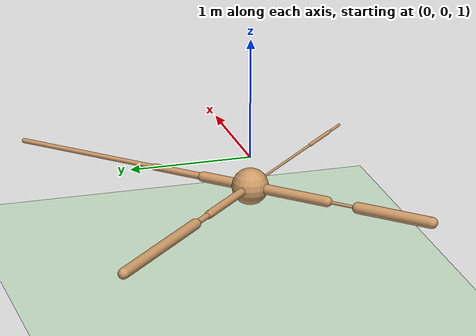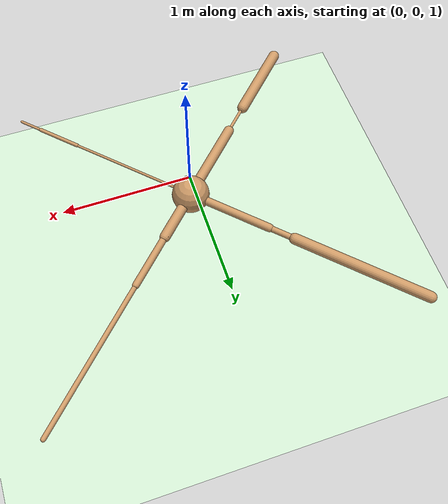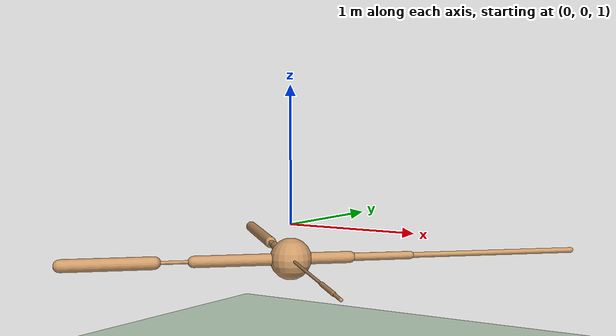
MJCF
<mujoco model="ant">
  <compiler angle="degree" coordinate="local" inertiafromgeom="true" />
  <option integrator="RK4" timestep="0.01" />
  <custom>
    <numeric data="0.0 0.0 0.55 1.0 0.0 0.0 0.0 0.0 1.0 0.0 -1.0 0.0 -1.0 0.0 1.0" name="init_qpos" />
  </custom>
  <default>
    <joint armature="1" damping="1" limited="true" />
    <geom conaffinity="0" condim="3" density="5.0" friction="1 0.5 0.5" margin="0.01" rgba="0.8 0.6 0.4 1" />
  </default>
  <asset>
    <texture builtin="gradient" height="100" rgb1="1 1 1" rgb2="0 0 0" type="skybox" width="100" />
    <texture builtin="flat" height="1278" mark="cross" markrgb="1 1 1" name="texgeom" random="0.01" rgb1="0.8 0.6 0.4" rgb2="0.8 0.6 0.4" type="cube" width="127" />
    <texture builtin="checker" height="100" name="texplane" rgb1="0 0 0" rgb2="0.8 0.8 0.8" type="2d" width="100" />
    <material name="MatPlane" reflectance="0.5" shininess="1" specular="1" texrepeat="60 60" texture="texplane" />
    <material name="geom" texture="texgeom" texuniform="true" />
  </asset>
  <worldbody>
    <light cutoff="100" diffuse="1 1 1" dir="-0 0 -1.3" directional="true" exponent="1" pos="0 0 1.3" specular=".1 .1 .1" />
    <geom conaffinity="1" condim="3" material="MatPlane" name="floor" pos="0 0 0" rgba="0.8 0.9 0.8 1" size="40 40 40" type="plane" />
    <body name="torso" pos="0 0 0.75">
      <camera name="track" mode="trackcom" pos="0 -11 5" xyaxes="1 0 0 0 0.5 1" />
      <geom name="torso_geom" pos="0 0 0" size="0.15154094994068146" type="sphere" />
      <joint armature="0" damping="0" limited="false" margin="0.01" name="root" pos="0 0 0" type="free" />
      <body name="front_left_leg" pos="0 0 0">
        <geom fromto="0 0 0 0.30795758962631226 0.30795758962631226 0" name="aux_1_geom" size="0.042426712810993195" type="capsule" />
        <body name="aux_1" pos="0.30795758962631226 0.30795758962631226 0">
          <joint axis="0 0 1" name="hip_1" pos="0.0 0.0 0.0" range="-30 30" type="hinge" />
          <geom fromto="0 0 0 0.32454100251197815 0.32454100251197815 0" name="left_leg_geom" size="0.028614012524485588" type="capsule" />
          <body name="left_leg_geom_aux" pos="0.32454100251197815 0.32454100251197815 0">
            <joint axis="-1 1 0" name="ankle_1" pos="0.0 0.0 0.0" range="30 70" type="hinge" />
            <geom fromto="0 0 0 0.9010674953460693 0.9010674953460693 0" name="left_ankle_geom" size="0.01972125843167305" type="capsule" />
          </body>
        </body>
      </body>
      <body name="front_right_leg" pos="0 0 0">
        <geom fromto="0 0 0 -0.4913044273853302 0.4913044273853302 0" name="aux_2_geom" size="0.033351119607686996" type="capsule" />
        <body name="aux_2" pos="-0.4913044273853302 0.4913044273853302 0">
          <joint axis="0 0 1" name="hip_2" pos="0.0 0.0 0.0" range="-30 30" type="hinge" />
          <geom fromto="0 0 0 -0.1519468128681183 0.1519468128681183 0" name="right_leg_geom" size="0.024075575172901154" type="capsule" />
          <body name="right_leg_geom_aux" pos="-0.1519468128681183 0.1519468128681183 0">
            <joint axis="1 1 0" name="ankle_2" pos="0.0 0.0 0.0" range="-70 -30" type="hinge" />
            <geom fromto="0 0 0 -0.7823032140731812 0.7823032140731812 0" name="right_ankle_geom" size="0.04428540915250778" type="capsule" />
          </body>
        </body>
      </body>
      <body name="back_leg" pos="0 0 0">
        <geom fromto="0 0 0 -0.49284932017326355 -0.49284932017326355 0" name="aux_3_geom" size="0.04235398769378662" type="capsule" />
        <body name="aux_3" pos="-0.49284932017326355 -0.49284932017326355 0">
          <joint axis="0 0 1" name="hip_3" pos="0.0 0.0 0.0" range="-30 30" type="hinge" />
          <geom fromto="0 0 0 -0.19415733218193054 -0.19415733218193054 0" name="back_leg_geom" size="0.012754242867231369" type="capsule" />
          <body name="back_leg_geom_aux" pos="-0.19415733218193054 -0.19415733218193054 0">
            <joint axis="-1 1 0" name="ankle_3" pos="0.0 0.0 0.0" range="-70 -30" type="hinge" />
            <geom fromto="0 0 0 -0.45691096782684326 -0.45691096782684326 0" name="third_ankle_geom" size="0.04649261385202408" type="capsule" />
          </body>
        </body>
      </body>
      <body name="right_back_leg" pos="0 0 0">
        <geom fromto="0 0 0 0.7544440627098083 -0.7544440627098083 0" name="aux_4_geom" size="0.01029537245631218" type="capsule" />
        <body name="aux_4" pos="0.7544440627098083 -0.7544440627098083 0">
          <joint axis="0 0 1" name="hip_4" pos="0.0 0.0 0.0" range="-30 30" type="hinge" />
          <geom fromto="0 0 0 0.2530350983142853 -0.2530350983142853 0" name="rightback_leg_geom" size="0.01494200062006712" type="capsule" />
          <body name="rightback_leg_geom_aux" pos="0.2530350983142853 -0.2530350983142853 0">
            <joint axis="1 1 0" name="ankle_4" pos="0.0 0.0 0.0" range="30 70" type="hinge" />
            <geom fromto="0 0 0 0.1337856650352478 -0.1337856650352478 0" name="fourth_ankle_geom" size="0.01078882347792387" type="capsule" />
          </body>
        </body>
      </body>
    </body>
  </worldbody>
  <actuator>
    <motor ctrllimited="true" ctrlrange="-1.0 1.0" joint="hip_4" gear="150" />
    <motor ctrllimited="true" ctrlrange="-1.0 1.0" joint="ankle_4" gear="150" />
    <motor ctrllimited="true" ctrlrange="-1.0 1.0" joint="hip_1" gear="150" />
    <motor ctrllimited="true" ctrlrange="-1.0 1.0" joint="ankle_1" gear="150" />
    <motor ctrllimited="true" ctrlrange="-1.0 1.0" joint="hip_2" gear="150" />
    <motor ctrllimited="true" ctrlrange="-1.0 1.0" joint="ankle_2" gear="150" />
    <motor ctrllimited="true" ctrlrange="-1.0 1.0" joint="hip_3" gear="150" />
    <motor ctrllimited="true" ctrlrange="-1.0 1.0" joint="ankle_3" gear="150" />
  </actuator>
</mujoco>
